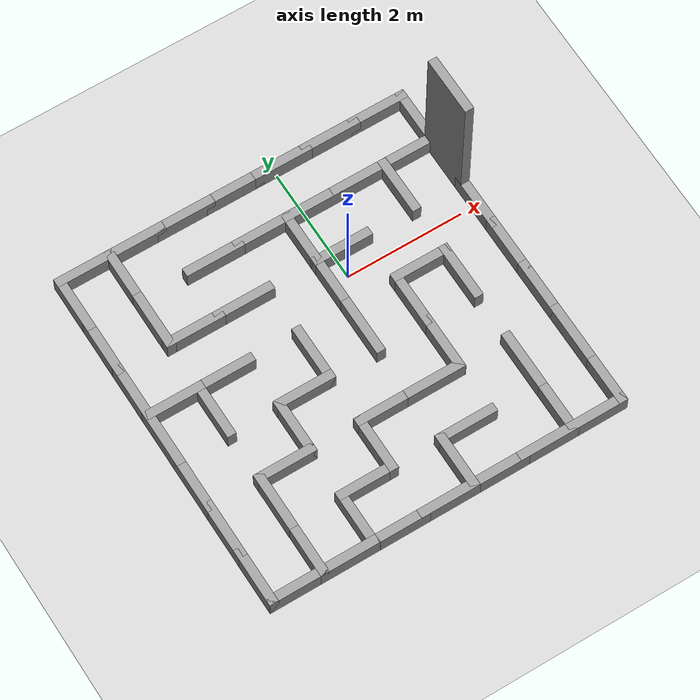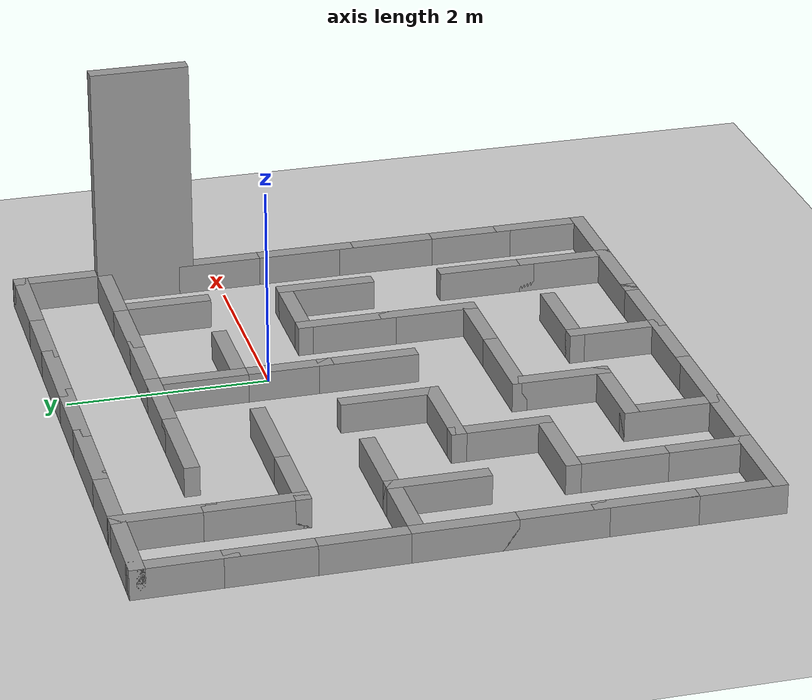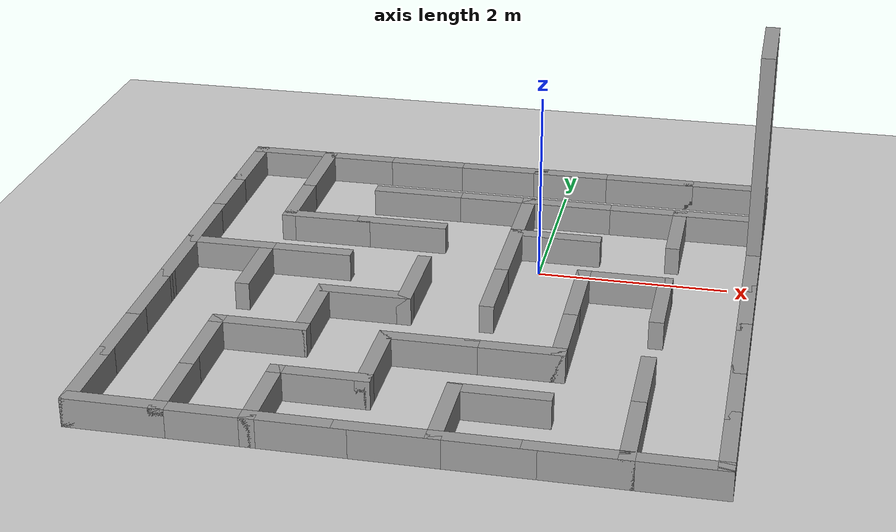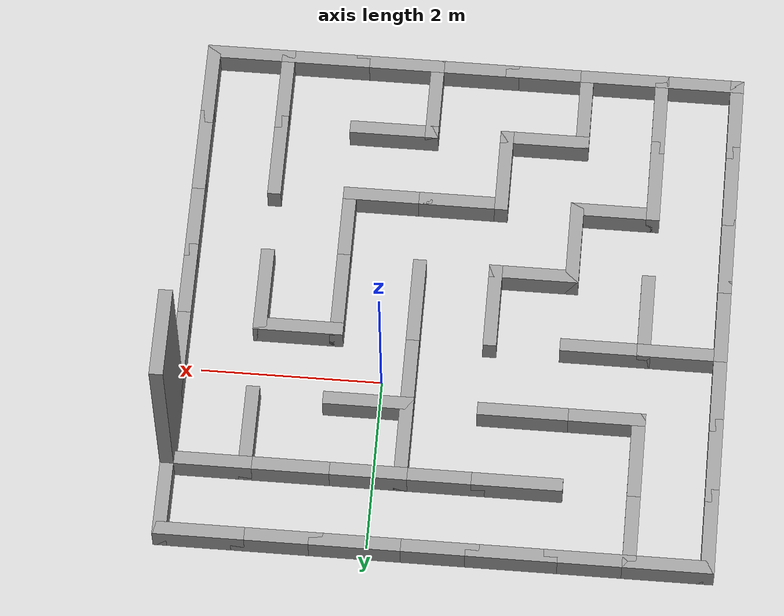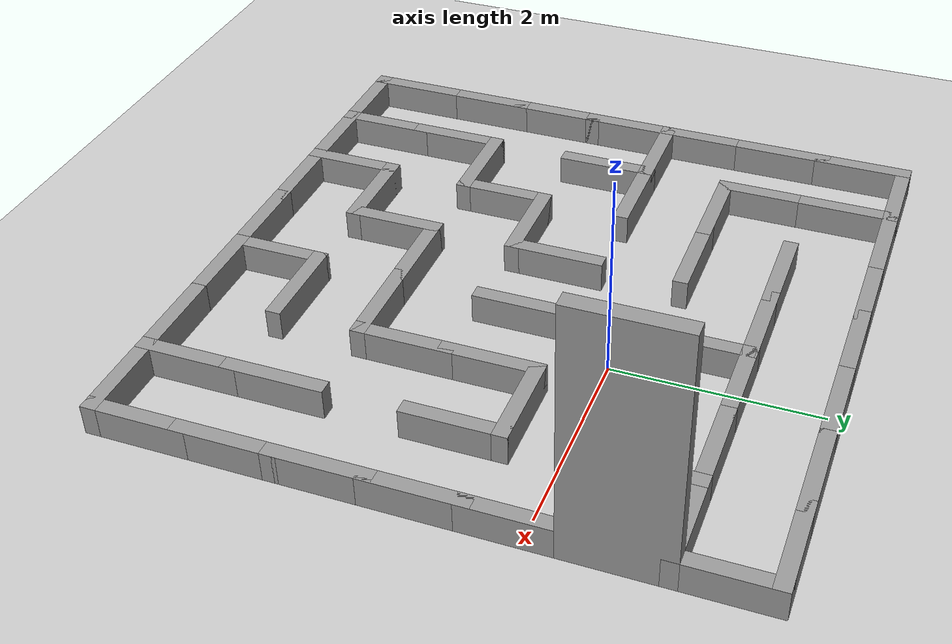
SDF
<sdf version="1.7">
 <world name="default">
  <scene><ambient>0.4 0.4 0.4 1</ambient><background>0.7 0.7 0.7 1</background><shadows>1</shadows></scene>
  <light name="sun" type="directional">
   <pose>0 0 10 0 -0 0</pose>
   <diffuse>0.8 0.8 0.8 1</diffuse>
   <specular>0.2 0.2 0.2 1</specular>
   <attenuation>
    <range>1000</range>
    <constant>0.9</constant>
    <linear>0.01</linear>
    <quadratic>0.001</quadratic>
   </attenuation>
   <direction>-0.5 0.1 -0.9</direction>
   <spot><inner_angle>0</inner_angle><outer_angle>0</outer_angle><falloff>0</falloff></spot>
  </light>
  <model name="ground_plane">
   <static>1</static>
   <link name="link">
    <collision name="collision">
     <geometry><plane><normal>0 0 1</normal><size>100 100</size></plane></geometry>
     <surface><friction><ode><mu>100</mu><mu2>50</mu2></ode></friction></surface>
    </collision>
    <visual name="visual">
     <cast_shadows>0</cast_shadows>
     <geometry><plane><normal>0 0 1</normal><size>100 100</size></plane></geometry>
     <material>
      <script><uri>file://media/materials/scripts/gazebo.material</uri><name>Gazebo/Grey</name></script>
     </material>
    </visual>
   </link>
  </model>
  <physics type="ode">
   <real_time_update_rate>1000</real_time_update_rate>
   <max_step_size>0.001</max_step_size>
   <real_time_factor>1</real_time_factor>
   <ode>
    <solver>
     <type>quick</type>
     <iters>150</iters>
     <precon_iters>0</precon_iters>
     <sor>1.4</sor>
     <use_dynamic_moi_rescaling>1</use_dynamic_moi_rescaling>
    </solver>
    <constraints>
     <cfm>1e-05</cfm>
     <erp>0.2</erp>
     <contact_max_correcting_vel>2000</contact_max_correcting_vel>
     <contact_surface_layer>0.01</contact_surface_layer>
    </constraints>
   </ode>
  </physics>
  <gravity>0 0 -9.8</gravity>
  <magnetic_field>6e-06 2.3e-05 -4.2e-05</magnetic_field>
  <atmosphere type="adiabatic"/>
  <audio><device>default</device></audio>
  <spherical_coordinates>
   <surface_model>EARTH_WGS84</surface_model>
   <latitude_deg>0</latitude_deg>
   <longitude_deg>0</longitude_deg>
   <elevation>0</elevation>
   <heading_deg>0</heading_deg>
  </spherical_coordinates>
  <model name="labirytn_latwy1">
   <pose>-0.735 -0.915 0 0 -0 0</pose>
   <link name="Wall_102">
    <collision name="Wall_102_Collision">
     <geometry><box><size>1 0.15 0.3</size></box></geometry>
     <pose>0 0 0.15 0 -0 0</pose>
    </collision>
    <visual name="Wall_102_Visual">
     <pose>0 0 0.15 0 -0 0</pose>
     <geometry><box><size>1 0.15 0.3</size></box></geometry>
     <material>
      <script><uri>file://media/materials/scripts/gazebo.material</uri><name>Gazebo/Grey</name></script>
      <ambient>1 1 1 1</ambient>
     </material>
     <meta><layer>0</layer></meta>
    </visual>
    <pose>1.7 0.425 0 0 -0 0</pose>
   </link>
   <link name="Wall_105">
    <collision name="Wall_105_Collision">
     <geometry><box><size>1 0.15 0.3</size></box></geometry>
     <pose>0 0 0.15 0 -0 0</pose>
    </collision>
    <visual name="Wall_105_Visual">
     <pose>0 0 0.15 0 -0 0</pose>
     <geometry><box><size>1 0.15 0.3</size></box></geometry>
     <material>
      <script><uri>file://media/materials/scripts/gazebo.material</uri><name>Gazebo/Grey</name></script>
      <ambient>1 1 1 1</ambient>
     </material>
     <meta><layer>0</layer></meta>
    </visual>
    <pose>-0.85 1.275 0 0 -0 0</pose>
   </link>
   <link name="Wall_107">
    <collision name="Wall_107_Collision">
     <geometry><box><size>1 0.15 0.3</size></box></geometry>
     <pose>0 0 0.15 0 -0 0</pose>
    </collision>
    <visual name="Wall_107_Visual">
     <pose>0 0 0.15 0 -0 0</pose>
     <geometry><box><size>1 0.15 0.3</size></box></geometry>
     <material>
      <script><uri>file://media/materials/scripts/gazebo.material</uri><name>Gazebo/Grey</name></script>
      <ambient>1 1 1 1</ambient>
     </material>
     <meta><layer>0</layer></meta>
    </visual>
    <pose>0.85 1.275 0 0 -0 0</pose>
   </link>
   <link name="Wall_109">
    <collision name="Wall_109_Collision">
     <geometry><box><size>1 0.15 0.3</size></box></geometry>
     <pose>0 0 0.15 0 -0 0</pose>
    </collision>
    <visual name="Wall_109_Visual">
     <pose>0 0 0.15 0 -0 0</pose>
     <geometry><box><size>1 0.15 0.3</size></box></geometry>
     <material>
      <script><uri>file://media/materials/scripts/gazebo.material</uri><name>Gazebo/Grey</name></script>
      <ambient>1 1 1 1</ambient>
     </material>
     <meta><layer>0</layer></meta>
    </visual>
    <pose>1.7 2.125 0 0 -0 0</pose>
   </link>
   <link name="Wall_110">
    <collision name="Wall_110_Collision">
     <geometry><box><size>1 0.15 0.3</size></box></geometry>
     <pose>0 0 0.15 0 -0 0</pose>
    </collision>
    <visual name="Wall_110_Visual">
     <pose>0 0 0.15 0 -0 0</pose>
     <geometry><box><size>1 0.15 0.3</size></box></geometry>
     <material>
      <script><uri>file://media/materials/scripts/gazebo.material</uri><name>Gazebo/Grey</name></script>
      <ambient>1 1 1 1</ambient>
     </material>
     <meta><layer>0</layer></meta>
    </visual>
    <pose>2.125 1.7 0 0 -0 -1.5708</pose>
   </link>
   <link name="Wall_112">
    <collision name="Wall_112_Collision">
     <geometry><box><size>1 0.15 2.5</size></box></geometry>
     <pose>0 0 1.25 0 -0 0</pose>
    </collision>
    <visual name="Wall_112_Visual">
     <pose>0 0 1.25 0 -0 0</pose>
     <geometry><box><size>1 0.15 2.5</size></box></geometry>
     <material>
      <script><uri>file://media/materials/scripts/gazebo.material</uri><name>Gazebo/Grey</name></script>
      <ambient>1 1 1 1</ambient>
     </material>
     <meta><layer>0</layer></meta>
    </visual>
    <pose>2.975 1.7 0 0 -0 1.5708</pose>
   </link>
   <link name="Wall_113">
    <collision name="Wall_113_Collision">
     <geometry><box><size>1 0.15 0.3</size></box></geometry>
     <pose>0 0 0.15 0 -0 0</pose>
    </collision>
    <visual name="Wall_113_Visual">
     <pose>0 0 0.15 0 -0 0</pose>
     <geometry><box><size>1 0.15 0.3</size></box></geometry>
     <material>
      <script><uri>file://media/materials/scripts/gazebo.material</uri><name>Gazebo/Grey</name></script>
      <ambient>1 1 1 1</ambient>
     </material>
     <meta><layer>0</layer></meta>
    </visual>
    <pose>2.55 2.125 0 0 -0 3.14159</pose>
   </link>
   <link name="Wall_115">
    <collision name="Wall_115_Collision">
     <geometry><box><size>1 0.15 0.3</size></box></geometry>
     <pose>0 0 0.15 0 -0 0</pose>
    </collision>
    <visual name="Wall_115_Visual">
     <pose>0 0 0.15 0 -0 0</pose>
     <geometry><box><size>1 0.15 0.3</size></box></geometry>
     <material>
      <script><uri>file://media/materials/scripts/gazebo.material</uri><name>Gazebo/Grey</name></script>
      <ambient>1 1 1 1</ambient>
     </material>
     <meta><layer>0</layer></meta>
    </visual>
    <pose>0.85 2.125 0 0 -0 3.14159</pose>
   </link>
   <link name="Wall_116">
    <collision name="Wall_116_Collision">
     <geometry><box><size>1 0.15 0.3</size></box></geometry>
     <pose>0 0 0.15 0 -0 0</pose>
    </collision>
    <visual name="Wall_116_Visual">
     <pose>0 0 0.15 0 -0 0</pose>
     <geometry><box><size>1 0.15 0.3</size></box></geometry>
     <material>
      <script><uri>file://media/materials/scripts/gazebo.material</uri><name>Gazebo/Grey</name></script>
      <ambient>1 1 1 1</ambient>
     </material>
     <meta><layer>0</layer></meta>
    </visual>
    <pose>0.425 1.7 0 0 -0 -1.5708</pose>
   </link>
   <link name="Wall_118">
    <collision name="Wall_118_Collision">
     <geometry><box><size>1 0.15 0.3</size></box></geometry>
     <pose>0 0 0.15 0 -0 0</pose>
    </collision>
    <visual name="Wall_118_Visual">
     <pose>0 0 0.15 0 -0 0</pose>
     <geometry><box><size>1 0.15 0.3</size></box></geometry>
     <material>
      <script><uri>file://media/materials/scripts/gazebo.material</uri><name>Gazebo/Grey</name></script>
      <ambient>1 1 1 1</ambient>
     </material>
     <meta><layer>0</layer></meta>
    </visual>
    <pose>-2.975 1.7 0 0 -0 1.5708</pose>
   </link>
   <link name="Wall_12">
    <collision name="Wall_12_Collision">
     <geometry><box><size>1 0.15 0.3</size></box></geometry>
     <pose>0 0 0.15 0 -0 0</pose>
    </collision>
    <visual name="Wall_12_Visual">
     <pose>0 0 0.15 0 -0 0</pose>
     <geometry><box><size>1 0.15 0.3</size></box></geometry>
     <material>
      <script><uri>file://media/materials/scripts/gazebo.material</uri><name>Gazebo/Grey</name></script>
      <ambient>1 1 1 1</ambient>
     </material>
     <meta><layer>0</layer></meta>
    </visual>
    <pose>-2.975 0 0 0 -0 1.5708</pose>
   </link>
   <link name="Wall_123">
    <collision name="Wall_123_Collision">
     <geometry><box><size>1 0.15 0.3</size></box></geometry>
     <pose>0 0 0.15 0 -0 0</pose>
    </collision>
    <visual name="Wall_123_Visual">
     <pose>0 0 0.15 0 -0 0</pose>
     <geometry><box><size>1 0.15 0.3</size></box></geometry>
     <material>
      <script><uri>file://media/materials/scripts/gazebo.material</uri><name>Gazebo/Grey</name></script>
      <ambient>1 1 1 1</ambient>
     </material>
     <meta><layer>0</layer></meta>
    </visual>
    <pose>-0.85 2.125 0 0 -0 0</pose>
   </link>
   <link name="Wall_124">
    <collision name="Wall_124_Collision">
     <geometry><box><size>1 0.15 0.3</size></box></geometry>
     <pose>0 0 0.15 0 -0 0</pose>
    </collision>
    <visual name="Wall_124_Visual">
     <pose>0 0 0.15 0 -0 0</pose>
     <geometry><box><size>1 0.15 0.3</size></box></geometry>
     <material>
      <script><uri>file://media/materials/scripts/gazebo.material</uri><name>Gazebo/Grey</name></script>
      <ambient>1 1 1 1</ambient>
     </material>
     <meta><layer>0</layer></meta>
    </visual>
    <pose>0 2.125 0 0 -0 0</pose>
   </link>
   <link name="Wall_126">
    <collision name="Wall_126_Collision">
     <geometry><box><size>1 0.15 0.3</size></box></geometry>
     <pose>0 0 0.15 0 -0 0</pose>
    </collision>
    <visual name="Wall_126_Visual">
     <pose>0 0 0.15 0 -0 0</pose>
     <geometry><box><size>1 0.15 0.3</size></box></geometry>
     <material>
      <script><uri>file://media/materials/scripts/gazebo.material</uri><name>Gazebo/Grey</name></script>
      <ambient>1 1 1 1</ambient>
     </material>
     <meta><layer>0</layer></meta>
    </visual>
    <pose>-2.125 1.7 0 0 -0 1.5708</pose>
   </link>
   <link name="Wall_127">
    <collision name="Wall_127_Collision">
     <geometry><box><size>1 0.15 0.3</size></box></geometry>
     <pose>0 0 0.15 0 -0 0</pose>
    </collision>
    <visual name="Wall_127_Visual">
     <pose>0 0 0.15 0 -0 0</pose>
     <geometry><box><size>1 0.15 0.3</size></box></geometry>
     <material>
      <script><uri>file://media/materials/scripts/gazebo.material</uri><name>Gazebo/Grey</name></script>
      <ambient>1 1 1 1</ambient>
     </material>
     <meta><layer>0</layer></meta>
    </visual>
    <pose>-2.125 2.55 0 0 -0 1.5708</pose>
   </link>
   <link name="Wall_128">
    <collision name="Wall_128_Collision">
     <geometry><box><size>1 0.15 0.3</size></box></geometry>
     <pose>0 0 0.15 0 -0 0</pose>
    </collision>
    <visual name="Wall_128_Visual">
     <pose>0 0 0.15 0 -0 0</pose>
     <geometry><box><size>1 0.15 0.3</size></box></geometry>
     <material>
      <script><uri>file://media/materials/scripts/gazebo.material</uri><name>Gazebo/Grey</name></script>
      <ambient>1 1 1 1</ambient>
     </material>
     <meta><layer>0</layer></meta>
    </visual>
    <pose>-1.7 2.975 0 0 -0 0</pose>
   </link>
   <link name="Wall_129">
    <collision name="Wall_129_Collision">
     <geometry><box><size>1 0.15 0.3</size></box></geometry>
     <pose>0 0 0.15 0 -0 0</pose>
    </collision>
    <visual name="Wall_129_Visual">
     <pose>0 0 0.15 0 -0 0</pose>
     <geometry><box><size>1 0.15 0.3</size></box></geometry>
     <material>
      <script><uri>file://media/materials/scripts/gazebo.material</uri><name>Gazebo/Grey</name></script>
      <ambient>1 1 1 1</ambient>
     </material>
     <meta><layer>0</layer></meta>
    </visual>
    <pose>-0.85 2.975 0 0 -0 0</pose>
   </link>
   <link name="Wall_13">
    <collision name="Wall_13_Collision">
     <geometry><box><size>1 0.15 0.3</size></box></geometry>
     <pose>0 0 0.15 0 -0 0</pose>
    </collision>
    <visual name="Wall_13_Visual">
     <pose>0 0 0.15 0 -0 0</pose>
     <geometry><box><size>1 0.15 0.3</size></box></geometry>
     <material>
      <script><uri>file://media/materials/scripts/gazebo.material</uri><name>Gazebo/Grey</name></script>
      <ambient>1 1 1 1</ambient>
     </material>
     <meta><layer>0</layer></meta>
    </visual>
    <pose>-2.55 0.425 0 0 -0 0</pose>
   </link>
   <link name="Wall_130">
    <collision name="Wall_130_Collision">
     <geometry><box><size>1 0.15 0.3</size></box></geometry>
     <pose>0 0 0.15 0 -0 0</pose>
    </collision>
    <visual name="Wall_130_Visual">
     <pose>0 0 0.15 0 -0 0</pose>
     <geometry><box><size>1 0.15 0.3</size></box></geometry>
     <material>
      <script><uri>file://media/materials/scripts/gazebo.material</uri><name>Gazebo/Grey</name></script>
      <ambient>1 1 1 1</ambient>
     </material>
     <meta><layer>0</layer></meta>
    </visual>
    <pose>0 2.975 0 0 -0 0</pose>
   </link>
   <link name="Wall_137">
    <collision name="Wall_137_Collision">
     <geometry><box><size>1 0.15 0.3</size></box></geometry>
     <pose>0 0 0.15 0 -0 0</pose>
    </collision>
    <visual name="Wall_137_Visual">
     <pose>0 0 0.15 0 -0 0</pose>
     <geometry><box><size>1 0.15 0.3</size></box></geometry>
     <material>
      <script><uri>file://media/materials/scripts/gazebo.material</uri><name>Gazebo/Grey</name></script>
      <ambient>1 1 1 1</ambient>
     </material>
     <meta><layer>0</layer></meta>
    </visual>
    <pose>-2.975 2.55 0 0 -0 1.5708</pose>
   </link>
   <link name="Wall_138">
    <collision name="Wall_138_Collision">
     <geometry><box><size>1 0.15 0.3</size></box></geometry>
     <pose>0 0 0.15 0 -0 0</pose>
    </collision>
    <visual name="Wall_138_Visual">
     <pose>0 0 0.15 0 -0 0</pose>
     <geometry><box><size>1 0.15 0.3</size></box></geometry>
     <material>
      <script><uri>file://media/materials/scripts/gazebo.material</uri><name>Gazebo/Grey</name></script>
      <ambient>1 1 1 1</ambient>
     </material>
     <meta><layer>0</layer></meta>
    </visual>
    <pose>-2.55 2.975 0 0 -0 0</pose>
   </link>
   <link name="Wall_14">
    <collision name="Wall_14_Collision">
     <geometry><box><size>1 0.15 0.3</size></box></geometry>
     <pose>0 0 0.15 0 -0 0</pose>
    </collision>
    <visual name="Wall_14_Visual">
     <pose>0 0 0.15 0 -0 0</pose>
     <geometry><box><size>1 0.15 0.3</size></box></geometry>
     <material>
      <script><uri>file://media/materials/scripts/gazebo.material</uri><name>Gazebo/Grey</name></script>
      <ambient>1 1 1 1</ambient>
     </material>
     <meta><layer>0</layer></meta>
    </visual>
    <pose>-2.125 0 0 0 -0 -1.5708</pose>
   </link>
   <link name="Wall_145">
    <collision name="Wall_145_Collision">
     <geometry><box><size>1 0.15 0.3</size></box></geometry>
     <pose>0 0 0.15 0 -0 0</pose>
    </collision>
    <visual name="Wall_145_Visual">
     <pose>0 0 0.15 0 -0 0</pose>
     <geometry><box><size>1 0.15 0.3</size></box></geometry>
     <material>
      <script><uri>file://media/materials/scripts/gazebo.material</uri><name>Gazebo/Grey</name></script>
      <ambient>1 1 1 1</ambient>
     </material>
     <meta><layer>0</layer></meta>
    </visual>
    <pose>0.85 2.975 0 0 -0 0</pose>
   </link>
   <link name="Wall_146">
    <collision name="Wall_146_Collision">
     <geometry><box><size>1 0.15 0.3</size></box></geometry>
     <pose>0 0 0.15 0 -0 0</pose>
    </collision>
    <visual name="Wall_146_Visual">
     <pose>0 0 0.15 0 -0 0</pose>
     <geometry><box><size>1 0.15 0.3</size></box></geometry>
     <material>
      <script><uri>file://media/materials/scripts/gazebo.material</uri><name>Gazebo/Grey</name></script>
      <ambient>1 1 1 1</ambient>
     </material>
     <meta><layer>0</layer></meta>
    </visual>
    <pose>1.7 2.975 0 0 -0 0</pose>
   </link>
   <link name="Wall_147">
    <collision name="Wall_147_Collision">
     <geometry><box><size>1 0.15 0.3</size></box></geometry>
     <pose>0 0 0.15 0 -0 0</pose>
    </collision>
    <visual name="Wall_147_Visual">
     <pose>0 0 0.15 0 -0 0</pose>
     <geometry><box><size>1 0.15 0.3</size></box></geometry>
     <material>
      <script><uri>file://media/materials/scripts/gazebo.material</uri><name>Gazebo/Grey</name></script>
      <ambient>1 1 1 1</ambient>
     </material>
     <meta><layer>0</layer></meta>
    </visual>
    <pose>2.55 2.975 0 0 -0 0</pose>
   </link>
   <link name="Wall_153">
    <collision name="Wall_153_Collision">
     <geometry><box><size>1 0.15 0.3</size></box></geometry>
     <pose>0 0 0.15 0 -0 0</pose>
    </collision>
    <visual name="Wall_153_Visual">
     <pose>0 0 0.15 0 -0 0</pose>
     <geometry><box><size>1 0.15 0.3</size></box></geometry>
     <material>
      <script><uri>file://media/materials/scripts/gazebo.material</uri><name>Gazebo/Grey</name></script>
      <ambient>1 1 1 1</ambient>
     </material>
     <meta><layer>0</layer></meta>
    </visual>
    <pose>2.975 2.55 0 0 -0 -1.5708</pose>
   </link>
   <link name="Wall_156">
    <collision name="Wall_156_Collision">
     <geometry><box><size>1 0.15 0.3</size></box></geometry>
     <pose>0 0 0.15 0 -0 0</pose>
    </collision>
    <visual name="Wall_156_Visual">
     <pose>0 0 0.15 0 -0 0</pose>
     <geometry><box><size>1 0.15 0.3</size></box></geometry>
     <material>
      <script><uri>file://media/materials/scripts/gazebo.material</uri><name>Gazebo/Grey</name></script>
      <ambient>1 1 1 1</ambient>
     </material>
     <meta><layer>0</layer></meta>
    </visual>
    <pose>-2.975 -0.85 0 0 -0 -1.5708</pose>
   </link>
   <link name="Wall_157">
    <collision name="Wall_157_Collision">
     <geometry><box><size>1 0.15 0.3</size></box></geometry>
     <pose>0 0 0.15 0 -0 0</pose>
    </collision>
    <visual name="Wall_157_Visual">
     <pose>0 0 0.15 0 -0 0</pose>
     <geometry><box><size>1 0.15 0.3</size></box></geometry>
     <material>
      <script><uri>file://media/materials/scripts/gazebo.material</uri><name>Gazebo/Grey</name></script>
      <ambient>1 1 1 1</ambient>
     </material>
     <meta><layer>0</layer></meta>
    </visual>
    <pose>-2.975 -1.7 0 0 -0 -1.5708</pose>
   </link>
   <link name="Wall_158">
    <collision name="Wall_158_Collision">
     <geometry><box><size>1 0.15 0.3</size></box></geometry>
     <pose>0 0 0.15 0 -0 0</pose>
    </collision>
    <visual name="Wall_158_Visual">
     <pose>0 0 0.15 0 -0 0</pose>
     <geometry><box><size>1 0.15 0.3</size></box></geometry>
     <material>
      <script><uri>file://media/materials/scripts/gazebo.material</uri><name>Gazebo/Grey</name></script>
      <ambient>1 1 1 1</ambient>
     </material>
     <meta><layer>0</layer></meta>
    </visual>
    <pose>-2.975 -2.55 0 0 -0 -1.5708</pose>
   </link>
   <link name="Wall_159">
    <collision name="Wall_159_Collision">
     <geometry><box><size>1 0.15 0.3</size></box></geometry>
     <pose>0 0 0.15 0 -0 0</pose>
    </collision>
    <visual name="Wall_159_Visual">
     <pose>0 0 0.15 0 -0 0</pose>
     <geometry><box><size>1 0.15 0.3</size></box></geometry>
     <material>
      <script><uri>file://media/materials/scripts/gazebo.material</uri><name>Gazebo/Grey</name></script>
      <ambient>1 1 1 1</ambient>
     </material>
     <meta><layer>0</layer></meta>
    </visual>
    <pose>-2.55 -2.975 0 0 -0 0</pose>
   </link>
   <link name="Wall_16">
    <collision name="Wall_16_Collision">
     <geometry><box><size>1 0.15 0.3</size></box></geometry>
     <pose>0 0 0.15 0 -0 0</pose>
    </collision>
    <visual name="Wall_16_Visual">
     <pose>0 0 0.15 0 -0 0</pose>
     <geometry><box><size>1 0.15 0.3</size></box></geometry>
     <material>
      <script><uri>file://media/materials/scripts/gazebo.material</uri><name>Gazebo/Grey</name></script>
      <ambient>1 1 1 1</ambient>
     </material>
     <meta><layer>0</layer></meta>
    </visual>
    <pose>-2.975 0.85 0 0 -0 1.5708</pose>
   </link>
   <link name="Wall_162">
    <collision name="Wall_162_Collision">
     <geometry><box><size>1 0.15 0.3</size></box></geometry>
     <pose>0 0 0.15 0 -0 0</pose>
    </collision>
    <visual name="Wall_162_Visual">
     <pose>0 0 0.15 0 -0 0</pose>
     <geometry><box><size>1 0.15 0.3</size></box></geometry>
     <material>
      <script><uri>file://media/materials/scripts/gazebo.material</uri><name>Gazebo/Grey</name></script>
      <ambient>1 1 1 1</ambient>
     </material>
     <meta><layer>0</layer></meta>
    </visual>
    <pose>-2.125 -1.7 0 0 -0 -1.5708</pose>
   </link>
   <link name="Wall_163">
    <collision name="Wall_163_Collision">
     <geometry><box><size>1 0.15 0.3</size></box></geometry>
     <pose>0 0 0.15 0 -0 0</pose>
    </collision>
    <visual name="Wall_163_Visual">
     <pose>0 0 0.15 0 -0 0</pose>
     <geometry><box><size>1 0.15 0.3</size></box></geometry>
     <material>
      <script><uri>file://media/materials/scripts/gazebo.material</uri><name>Gazebo/Grey</name></script>
      <ambient>1 1 1 1</ambient>
     </material>
     <meta><layer>0</layer></meta>
    </visual>
    <pose>-2.125 -2.55 0 0 -0 -1.5708</pose>
   </link>
   <link name="Wall_165">
    <collision name="Wall_165_Collision">
     <geometry><box><size>1 0.15 0.3</size></box></geometry>
     <pose>0 0 0.15 0 -0 0</pose>
    </collision>
    <visual name="Wall_165_Visual">
     <pose>0 0 0.15 0 -0 0</pose>
     <geometry><box><size>1 0.15 0.3</size></box></geometry>
     <material>
      <script><uri>file://media/materials/scripts/gazebo.material</uri><name>Gazebo/Grey</name></script>
      <ambient>1 1 1 1</ambient>
     </material>
     <meta><layer>0</layer></meta>
    </visual>
    <pose>1.7 -2.975 0 0 -0 3.14159</pose>
   </link>
   <link name="Wall_166">
    <collision name="Wall_166_Collision">
     <geometry><box><size>1 0.15 0.3</size></box></geometry>
     <pose>0 0 0.15 0 -0 0</pose>
    </collision>
    <visual name="Wall_166_Visual">
     <pose>0 0 0.15 0 -0 0</pose>
     <geometry><box><size>1 0.15 0.3</size></box></geometry>
     <material>
      <script><uri>file://media/materials/scripts/gazebo.material</uri><name>Gazebo/Grey</name></script>
      <ambient>1 1 1 1</ambient>
     </material>
     <meta><layer>0</layer></meta>
    </visual>
    <pose>0.85 -2.975 0 0 -0 3.14159</pose>
   </link>
   <link name="Wall_168">
    <collision name="Wall_168_Collision">
     <geometry><box><size>1 0.15 0.3</size></box></geometry>
     <pose>0 0 0.15 0 -0 0</pose>
    </collision>
    <visual name="Wall_168_Visual">
     <pose>0 0 0.15 0 -0 0</pose>
     <geometry><box><size>1 0.15 0.3</size></box></geometry>
     <material>
      <script><uri>file://media/materials/scripts/gazebo.material</uri><name>Gazebo/Grey</name></script>
      <ambient>1 1 1 1</ambient>
     </material>
     <meta><layer>0</layer></meta>
    </visual>
    <pose>2.125 -2.55 0 0 -0 -1.5708</pose>
   </link>
   <link name="Wall_170">
    <collision name="Wall_170_Collision">
     <geometry><box><size>1 0.15 0.3</size></box></geometry>
     <pose>0 0 0.15 0 -0 0</pose>
    </collision>
    <visual name="Wall_170_Visual">
     <pose>0 0 0.15 0 -0 0</pose>
     <geometry><box><size>1 0.15 0.3</size></box></geometry>
     <material>
      <script><uri>file://media/materials/scripts/gazebo.material</uri><name>Gazebo/Grey</name></script>
      <ambient>1 1 1 1</ambient>
     </material>
     <meta><layer>0</layer></meta>
    </visual>
    <pose>0.85 -2.125 0 0 -0 0</pose>
   </link>
   <link name="Wall_19">
    <collision name="Wall_19_Collision">
     <geometry><box><size>1 0.15 0.3</size></box></geometry>
     <pose>0 0 0.15 0 -0 0</pose>
    </collision>
    <visual name="Wall_19_Visual">
     <pose>0 0 0.15 0 -0 0</pose>
     <geometry><box><size>1 0.15 0.3</size></box></geometry>
     <material>
      <script><uri>file://media/materials/scripts/gazebo.material</uri><name>Gazebo/Grey</name></script>
      <ambient>1 1 1 1</ambient>
     </material>
     <meta><layer>0</layer></meta>
    </visual>
    <pose>-1.7 0.425 0 0 -0 0</pose>
   </link>
   <link name="Wall_21">
    <collision name="Wall_21_Collision">
     <geometry><box><size>1 0.15 0.3</size></box></geometry>
     <pose>0 0 0.15 0 -0 0</pose>
    </collision>
    <visual name="Wall_21_Visual">
     <pose>0 0 0.15 0 -0 0</pose>
     <geometry><box><size>1 0.15 0.3</size></box></geometry>
     <material>
      <script><uri>file://media/materials/scripts/gazebo.material</uri><name>Gazebo/Grey</name></script>
      <ambient>1 1 1 1</ambient>
     </material>
     <meta><layer>0</layer></meta>
    </visual>
    <pose>-1.7 1.275 0 0 -0 3.14159</pose>
   </link>
   <link name="Wall_26">
    <collision name="Wall_26_Collision">
     <geometry><box><size>1 0.15 0.3</size></box></geometry>
     <pose>0 0 0.15 0 -0 0</pose>
    </collision>
    <visual name="Wall_26_Visual">
     <pose>0 0 0.15 0 -0 0</pose>
     <geometry><box><size>1 0.15 0.3</size></box></geometry>
     <material>
      <script><uri>file://media/materials/scripts/gazebo.material</uri><name>Gazebo/Grey</name></script>
      <ambient>1 1 1 1</ambient>
     </material>
     <meta><layer>0</layer></meta>
    </visual>
    <pose>-1.7 -1.275 0 0 -0 0</pose>
   </link>
   <link name="Wall_30">
    <collision name="Wall_30_Collision">
     <geometry><box><size>1 0.15 0.3</size></box></geometry>
     <pose>0 0 0.15 0 -0 0</pose>
    </collision>
    <visual name="Wall_30_Visual">
     <pose>0 0 0.15 0 -0 0</pose>
     <geometry><box><size>1 0.15 0.3</size></box></geometry>
     <material>
      <script><uri>file://media/materials/scripts/gazebo.material</uri><name>Gazebo/Grey</name></script>
      <ambient>1 1 1 1</ambient>
     </material>
     <meta><layer>0</layer></meta>
    </visual>
    <pose>-1.275 -0.85 0 0 -0 -1.5708</pose>
   </link>
   <link name="Wall_32">
    <collision name="Wall_32_Collision">
     <geometry><box><size>1 0.15 0.3</size></box></geometry>
     <pose>0 0 0.15 0 -0 0</pose>
    </collision>
    <visual name="Wall_32_Visual">
     <pose>0 0 0.15 0 -0 0</pose>
     <geometry><box><size>1 0.15 0.3</size></box></geometry>
     <material>
      <script><uri>file://media/materials/scripts/gazebo.material</uri><name>Gazebo/Grey</name></script>
      <ambient>1 1 1 1</ambient>
     </material>
     <meta><layer>0</layer></meta>
    </visual>
    <pose>-1.7 -2.975 0 0 -0 0</pose>
   </link>
   <link name="Wall_33">
    <collision name="Wall_33_Collision">
     <geometry><box><size>1 0.15 0.3</size></box></geometry>
     <pose>0 0 0.15 0 -0 0</pose>
    </collision>
    <visual name="Wall_33_Visual">
     <pose>0 0 0.15 0 -0 0</pose>
     <geometry><box><size>1 0.15 0.3</size></box></geometry>
     <material>
      <script><uri>file://media/materials/scripts/gazebo.material</uri><name>Gazebo/Grey</name></script>
      <ambient>1 1 1 1</ambient>
     </material>
     <meta><layer>0</layer></meta>
    </visual>
    <pose>-1.275 -2.55 0 0 -0 1.5708</pose>
   </link>
   <link name="Wall_34">
    <collision name="Wall_34_Collision">
     <geometry><box><size>1 0.15 0.3</size></box></geometry>
     <pose>0 0 0.15 0 -0 0</pose>
    </collision>
    <visual name="Wall_34_Visual">
     <pose>0 0 0.15 0 -0 0</pose>
     <geometry><box><size>1 0.15 0.3</size></box></geometry>
     <material>
      <script><uri>file://media/materials/scripts/gazebo.material</uri><name>Gazebo/Grey</name></script>
      <ambient>1 1 1 1</ambient>
     </material>
     <meta><layer>0</layer></meta>
    </visual>
    <pose>-0.85 -2.125 0 0 -0 0</pose>
   </link>
   <link name="Wall_39">
    <collision name="Wall_39_Collision">
     <geometry><box><size>1 0.15 0.3</size></box></geometry>
     <pose>0 0 0.15 0 -0 0</pose>
    </collision>
    <visual name="Wall_39_Visual">
     <pose>0 0 0.15 0 -0 0</pose>
     <geometry><box><size>1 0.15 0.3</size></box></geometry>
     <material>
      <script><uri>file://media/materials/scripts/gazebo.material</uri><name>Gazebo/Grey</name></script>
      <ambient>1 1 1 1</ambient>
     </material>
     <meta><layer>0</layer></meta>
    </visual>
    <pose>2.975 -2.55 0 0 -0 -1.5708</pose>
   </link>
   <link name="Wall_40">
    <collision name="Wall_40_Collision">
     <geometry><box><size>1 0.15 0.3</size></box></geometry>
     <pose>0 0 0.15 0 -0 0</pose>
    </collision>
    <visual name="Wall_40_Visual">
     <pose>0 0 0.15 0 -0 0</pose>
     <geometry><box><size>1 0.15 0.3</size></box></geometry>
     <material>
      <script><uri>file://media/materials/scripts/gazebo.material</uri><name>Gazebo/Grey</name></script>
      <ambient>1 1 1 1</ambient>
     </material>
     <meta><layer>0</layer></meta>
    </visual>
    <pose>2.55 -2.975 0 0 -0 3.14159</pose>
   </link>
   <link name="Wall_43">
    <collision name="Wall_43_Collision">
     <geometry><box><size>1 0.15 0.3</size></box></geometry>
     <pose>0 0 0.15 0 -0 0</pose>
    </collision>
    <visual name="Wall_43_Visual">
     <pose>0 0 0.15 0 -0 0</pose>
     <geometry><box><size>1 0.15 0.3</size></box></geometry>
     <material>
      <script><uri>file://media/materials/scripts/gazebo.material</uri><name>Gazebo/Grey</name></script>
      <ambient>1 1 1 1</ambient>
     </material>
     <meta><layer>0</layer></meta>
    </visual>
    <pose>0 -2.975 0 0 -0 3.14159</pose>
   </link>
   <link name="Wall_44">
    <collision name="Wall_44_Collision">
     <geometry><box><size>1 0.15 0.3</size></box></geometry>
     <pose>0 0 0.15 0 -0 0</pose>
    </collision>
    <visual name="Wall_44_Visual">
     <pose>0 0 0.15 0 -0 0</pose>
     <geometry><box><size>1 0.15 0.3</size></box></geometry>
     <material>
      <script><uri>file://media/materials/scripts/gazebo.material</uri><name>Gazebo/Grey</name></script>
      <ambient>1 1 1 1</ambient>
     </material>
     <meta><layer>0</layer></meta>
    </visual>
    <pose>-0.85 -2.975 0 0 -0 3.14159</pose>
   </link>
   <link name="Wall_47">
    <collision name="Wall_47_Collision">
     <geometry><box><size>1 0.15 0.3</size></box></geometry>
     <pose>0 0 0.15 0 -0 0</pose>
    </collision>
    <visual name="Wall_47_Visual">
     <pose>0 0 0.15 0 -0 0</pose>
     <geometry><box><size>1 0.15 0.3</size></box></geometry>
     <material>
      <script><uri>file://media/materials/scripts/gazebo.material</uri><name>Gazebo/Grey</name></script>
      <ambient>1 1 1 1</ambient>
     </material>
     <meta><layer>0</layer></meta>
    </visual>
    <pose>0 -1.275 0 0 -0 0</pose>
   </link>
   <link name="Wall_48">
    <collision name="Wall_48_Collision">
     <geometry><box><size>1 0.15 0.3</size></box></geometry>
     <pose>0 0 0.15 0 -0 0</pose>
    </collision>
    <visual name="Wall_48_Visual">
     <pose>0 0 0.15 0 -0 0</pose>
     <geometry><box><size>1 0.15 0.3</size></box></geometry>
     <material>
      <script><uri>file://media/materials/scripts/gazebo.material</uri><name>Gazebo/Grey</name></script>
      <ambient>1 1 1 1</ambient>
     </material>
     <meta><layer>0</layer></meta>
    </visual>
    <pose>0.85 -1.275 0 0 -0 0</pose>
   </link>
   <link name="Wall_51">
    <collision name="Wall_51_Collision">
     <geometry><box><size>1 0.15 0.3</size></box></geometry>
     <pose>0 0 0.15 0 -0 0</pose>
    </collision>
    <visual name="Wall_51_Visual">
     <pose>0 0 0.15 0 -0 0</pose>
     <geometry><box><size>1 0.15 0.3</size></box></geometry>
     <material>
      <script><uri>file://media/materials/scripts/gazebo.material</uri><name>Gazebo/Grey</name></script>
      <ambient>1 1 1 1</ambient>
     </material>
     <meta><layer>0</layer></meta>
    </visual>
    <pose>2.975 -0.85 0 0 -0 1.5708</pose>
   </link>
   <link name="Wall_52">
    <collision name="Wall_52_Collision">
     <geometry><box><size>1 0.15 0.3</size></box></geometry>
     <pose>0 0 0.15 0 -0 0</pose>
    </collision>
    <visual name="Wall_52_Visual">
     <pose>0 0 0.15 0 -0 0</pose>
     <geometry><box><size>1 0.15 0.3</size></box></geometry>
     <material>
      <script><uri>file://media/materials/scripts/gazebo.material</uri><name>Gazebo/Grey</name></script>
      <ambient>1 1 1 1</ambient>
     </material>
     <meta><layer>0</layer></meta>
    </visual>
    <pose>2.975 0 0 0 -0 1.5708</pose>
   </link>
   <link name="Wall_53">
    <collision name="Wall_53_Collision">
     <geometry><box><size>1 0.15 0.3</size></box></geometry>
     <pose>0 0 0.15 0 -0 0</pose>
    </collision>
    <visual name="Wall_53_Visual">
     <pose>0 0 0.15 0 -0 0</pose>
     <geometry><box><size>1 0.15 0.3</size></box></geometry>
     <material>
      <script><uri>file://media/materials/scripts/gazebo.material</uri><name>Gazebo/Grey</name></script>
      <ambient>1 1 1 1</ambient>
     </material>
     <meta><layer>0</layer></meta>
    </visual>
    <pose>2.975 0.85 0 0 -0 1.5708</pose>
   </link>
   <link name="Wall_56">
    <collision name="Wall_56_Collision">
     <geometry><box><size>1 0.15 0.3</size></box></geometry>
     <pose>0 0 0.15 0 -0 0</pose>
    </collision>
    <visual name="Wall_56_Visual">
     <pose>0 0 0.15 0 -0 0</pose>
     <geometry><box><size>1 0.15 0.3</size></box></geometry>
     <material>
      <script><uri>file://media/materials/scripts/gazebo.material</uri><name>Gazebo/Grey</name></script>
      <ambient>1 1 1 1</ambient>
     </material>
     <meta><layer>0</layer></meta>
    </visual>
    <pose>-0.425 -1.7 0 0 -0 -1.5708</pose>
   </link>
   <link name="Wall_60">
    <collision name="Wall_60_Collision">
     <geometry><box><size>1 0.15 0.3</size></box></geometry>
     <pose>0 0 0.15 0 -0 0</pose>
    </collision>
    <visual name="Wall_60_Visual">
     <pose>0 0 0.15 0 -0 0</pose>
     <geometry><box><size>1 0.15 0.3</size></box></geometry>
     <material>
      <script><uri>file://media/materials/scripts/gazebo.material</uri><name>Gazebo/Grey</name></script>
      <ambient>1 1 1 1</ambient>
     </material>
     <meta><layer>0</layer></meta>
    </visual>
    <pose>2.975 -1.7 0 0 -0 -1.5708</pose>
   </link>
   <link name="Wall_62">
    <collision name="Wall_62_Collision">
     <geometry><box><size>1 0.15 0.3</size></box></geometry>
     <pose>0 0 0.15 0 -0 0</pose>
    </collision>
    <visual name="Wall_62_Visual">
     <pose>0 0 0.15 0 -0 0</pose>
     <geometry><box><size>1 0.15 0.3</size></box></geometry>
     <material>
      <script><uri>file://media/materials/scripts/gazebo.material</uri><name>Gazebo/Grey</name></script>
      <ambient>1 1 1 1</ambient>
     </material>
     <meta><layer>0</layer></meta>
    </visual>
    <pose>2.125 -1.7 0 0 -0 -1.5708</pose>
   </link>
   <link name="Wall_68">
    <collision name="Wall_68_Collision">
     <geometry><box><size>1 0.15 0.3</size></box></geometry>
     <pose>0 0 0.15 0 -0 0</pose>
    </collision>
    <visual name="Wall_68_Visual">
     <pose>0 0 0.15 0 -0 0</pose>
     <geometry><box><size>1 0.15 0.3</size></box></geometry>
     <material>
      <script><uri>file://media/materials/scripts/gazebo.material</uri><name>Gazebo/Grey</name></script>
      <ambient>1 1 1 1</ambient>
     </material>
     <meta><layer>0</layer></meta>
    </visual>
    <pose>0.425 -2.55 0 0 -0 -1.5708</pose>
   </link>
   <link name="Wall_75">
    <collision name="Wall_75_Collision">
     <geometry><box><size>1 0.15 0.3</size></box></geometry>
     <pose>0 0 0.15 0 -0 0</pose>
    </collision>
    <visual name="Wall_75_Visual">
     <pose>0 0 0.15 0 -0 0</pose>
     <geometry><box><size>1 0.15 0.3</size></box></geometry>
     <material>
      <script><uri>file://media/materials/scripts/gazebo.material</uri><name>Gazebo/Grey</name></script>
      <ambient>1 1 1 1</ambient>
     </material>
     <meta><layer>0</layer></meta>
    </visual>
    <pose>-0.85 -0.425 0 0 -0 0</pose>
   </link>
   <link name="Wall_82">
    <collision name="Wall_82_Collision">
     <geometry><box><size>1 0.15 0.3</size></box></geometry>
     <pose>0 0 0.15 0 -0 0</pose>
    </collision>
    <visual name="Wall_82_Visual">
     <pose>0 0 0.15 0 -0 0</pose>
     <geometry><box><size>1 0.15 0.3</size></box></geometry>
     <material>
      <script><uri>file://media/materials/scripts/gazebo.material</uri><name>Gazebo/Grey</name></script>
      <ambient>1 1 1 1</ambient>
     </material>
     <meta><layer>0</layer></meta>
    </visual>
    <pose>2.125 0 0 0 -0 1.5708</pose>
   </link>
   <link name="Wall_88">
    <collision name="Wall_88_Collision">
     <geometry><box><size>1 0.15 0.3</size></box></geometry>
     <pose>0 0 0.15 0 -0 0</pose>
    </collision>
    <visual name="Wall_88_Visual">
     <pose>0 0 0.15 0 -0 0</pose>
     <geometry><box><size>1 0.15 0.3</size></box></geometry>
     <material>
      <script><uri>file://media/materials/scripts/gazebo.material</uri><name>Gazebo/Grey</name></script>
      <ambient>1 1 1 1</ambient>
     </material>
     <meta><layer>0</layer></meta>
    </visual>
    <pose>1.275 0 0 0 -0 -1.5708</pose>
   </link>
   <link name="Wall_89">
    <collision name="Wall_89_Collision">
     <geometry><box><size>1 0.15 0.3</size></box></geometry>
     <pose>0 0 0.15 0 -0 0</pose>
    </collision>
    <visual name="Wall_89_Visual">
     <pose>0 0 0.15 0 -0 0</pose>
     <geometry><box><size>1 0.15 0.3</size></box></geometry>
     <material>
      <script><uri>file://media/materials/scripts/gazebo.material</uri><name>Gazebo/Grey</name></script>
      <ambient>1 1 1 1</ambient>
     </material>
     <meta><layer>0</layer></meta>
    </visual>
    <pose>1.275 -0.85 0 0 -0 -1.5708</pose>
   </link>
   <link name="Wall_92">
    <collision name="Wall_92_Collision">
     <geometry><box><size>1 0.15 0.3</size></box></geometry>
     <pose>0 0 0.15 0 -0 0</pose>
    </collision>
    <visual name="Wall_92_Visual">
     <pose>0 0 0.15 0 -0 0</pose>
     <geometry><box><size>1 0.15 0.3</size></box></geometry>
     <material>
      <script><uri>file://media/materials/scripts/gazebo.material</uri><name>Gazebo/Grey</name></script>
      <ambient>1 1 1 1</ambient>
     </material>
     <meta><layer>0</layer></meta>
    </visual>
    <pose>0.425 0 0 0 -0 1.5708</pose>
   </link>
   <link name="Wall_93">
    <collision name="Wall_93_Collision">
     <geometry><box><size>1 0.15 0.3</size></box></geometry>
     <pose>0 0 0.15 0 -0 0</pose>
    </collision>
    <visual name="Wall_93_Visual">
     <pose>0 0 0.15 0 -0 0</pose>
     <geometry><box><size>1 0.15 0.3</size></box></geometry>
     <material>
      <script><uri>file://media/materials/scripts/gazebo.material</uri><name>Gazebo/Grey</name></script>
      <ambient>1 1 1 1</ambient>
     </material>
     <meta><layer>0</layer></meta>
    </visual>
    <pose>0.425 0.85 0 0 -0 1.5708</pose>
   </link>
   <link name="Wall_96">
    <collision name="Wall_96_Collision">
     <geometry><box><size>1 0.15 0.3</size></box></geometry>
     <pose>0 0 0.15 0 -0 0</pose>
    </collision>
    <visual name="Wall_96_Visual">
     <pose>0 0 0.15 0 -0 0</pose>
     <geometry><box><size>1 0.15 0.3</size></box></geometry>
     <material>
      <script><uri>file://media/materials/scripts/gazebo.material</uri><name>Gazebo/Grey</name></script>
      <ambient>1 1 1 1</ambient>
     </material>
     <meta><layer>0</layer></meta>
    </visual>
    <pose>-0.425 0 0 0 -0 -1.5708</pose>
   </link>
   <static>1</static>
  </model>
 </world>
</sdf>
